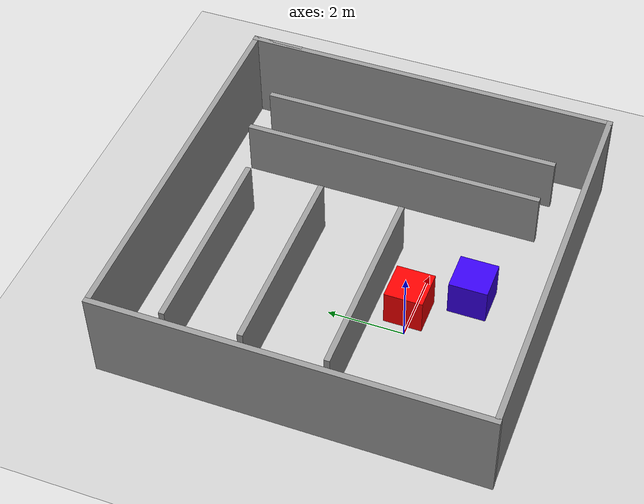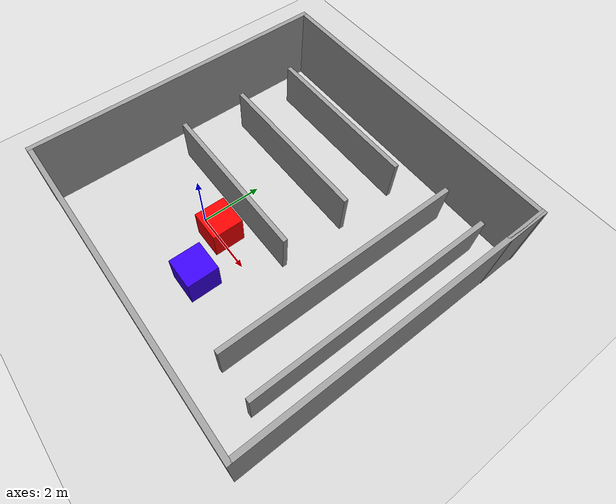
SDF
<sdf version="1.6">
 <world name="default">
  <light name="sun" type="directional">
   <pose>0 0 10 0 -0 0</pose>
   <diffuse>0.8 0.8 0.8 1</diffuse>
   <specular>0.2 0.2 0.2 1</specular>
   <attenuation>
    <range>1000</range>
    <constant>0.9</constant>
    <linear>0.01</linear>
    <quadratic>0.001</quadratic>
   </attenuation>
   <direction>-0.5 0.1 -0.9</direction>
  </light>
  <model name="ground_plane">
   <static>1</static>
   <link name="link">
    <collision name="collision">
     <geometry><plane><normal>0 0 1</normal><size>100 100</size></plane></geometry>
     <surface>
      <contact><collide_bitmask>65535</collide_bitmask></contact>
      <friction><ode><mu>100</mu><mu2>50</mu2></ode></friction>
     </surface>
    </collision>
    <visual name="visual">
     <cast_shadows>0</cast_shadows>
     <geometry><plane><normal>0 0 1</normal><size>100 100</size></plane></geometry>
     <material>
      <script><uri>file://media/materials/scripts/gazebo.material</uri><name>Gazebo/Grey</name></script>
     </material>
    </visual>
   </link>
  </model>
  <physics name="default_physics" default="0" type="ode">
   <real_time_update_rate>1000</real_time_update_rate>
   <max_step_size>0.001</max_step_size>
   <real_time_factor>1</real_time_factor>
   <ode>
    <solver>
     <type>quick</type>
     <iters>150</iters>
     <precon_iters>0</precon_iters>
     <sor>1.4</sor>
     <use_dynamic_moi_rescaling>1</use_dynamic_moi_rescaling>
    </solver>
    <constraints>
     <cfm>1e-05</cfm>
     <erp>0.2</erp>
     <contact_max_correcting_vel>2000</contact_max_correcting_vel>
     <contact_surface_layer>0.01</contact_surface_layer>
    </constraints>
   </ode>
  </physics>
  <scene><ambient>0.4 0.4 0.4 1</ambient><background>0.7 0.7 0.7 1</background><shadows>1</shadows></scene>
  <gravity>0 0 -9.8</gravity>
  <magnetic_field>6e-06 2.3e-05 -4.2e-05</magnetic_field>
  <atmosphere type="adiabatic"/>
  <audio><device>default</device></audio>
  <spherical_coordinates>
   <surface_model>EARTH_WGS84</surface_model>
   <latitude_deg>0</latitude_deg>
   <longitude_deg>0</longitude_deg>
   <elevation>0</elevation>
   <heading_deg>0</heading_deg>
  </spherical_coordinates>
  <model name="Warehouse">
   <pose>1.48568 1.6319 0 0 -0 0</pose>
   <link name="Wall_1">
    <collision name="Wall_1_Collision">
     <geometry><box><size>10 0.15 2.5</size></box></geometry>
     <pose>0 0 1.25 0 -0 0</pose>
    </collision>
    <visual name="Wall_1_Visual">
     <pose>0 0 1.25 0 -0 0</pose>
     <geometry><box><size>10 0.15 2.5</size></box></geometry>
     <material>
      <script><uri>file://media/materials/scripts/gazebo.material</uri><name>Gazebo/Grey</name></script>
      <ambient>1 1 1 1</ambient>
     </material>
     <meta><layer>0</layer></meta>
    </visual>
    <pose>0.059885 -4.92067 0 0 -0 0</pose>
   </link>
   <link name="Wall_11">
    <collision name="Wall_11_Collision">
     <geometry><box><size>5.25 0.15 1.5</size></box></geometry>
     <pose>0 0 0.75 0 -0 0</pose>
    </collision>
    <visual name="Wall_11_Visual">
     <pose>0 0 0.75 0 -0 0</pose>
     <geometry><box><size>5.25 0.15 1.5</size></box></geometry>
     <material>
      <script><uri>file://media/materials/scripts/gazebo.material</uri><name>Gazebo/Grey</name></script>
      <ambient>1 1 1 1</ambient>
     </material>
     <meta><layer>0</layer></meta>
    </visual>
    <pose>-1.42468 3.5931 0 0 -0 0</pose>
   </link>
   <link name="Wall_13">
    <collision name="Wall_13_Collision">
     <geometry><box><size>5.25 0.15 1.5</size></box></geometry>
     <pose>0 0 0.75 0 -0 0</pose>
    </collision>
    <visual name="Wall_13_Visual">
     <pose>0 0 0.75 0 -0 0</pose>
     <geometry><box><size>5.25 0.15 1.5</size></box></geometry>
     <material>
      <script><uri>file://media/materials/scripts/gazebo.material</uri><name>Gazebo/Grey</name></script>
      <ambient>1 1 1 1</ambient>
     </material>
     <meta><layer>0</layer></meta>
    </visual>
    <pose>-1.38968 1.58793 0 0 -0 0</pose>
   </link>
   <link name="Wall_15">
    <collision name="Wall_15_Collision">
     <geometry><box><size>5.25 0.15 1.5</size></box></geometry>
     <pose>0 0 0.75 0 -0 0</pose>
    </collision>
    <visual name="Wall_15_Visual">
     <pose>0 0 0.75 0 -0 0</pose>
     <geometry><box><size>5.25 0.15 1.5</size></box></geometry>
     <material>
      <script><uri>file://media/materials/scripts/gazebo.material</uri><name>Gazebo/Grey</name></script>
      <ambient>1 1 1 1</ambient>
     </material>
     <meta><layer>0</layer></meta>
    </visual>
    <pose>-1.38968 -0.593505 0 0 -0 0</pose>
   </link>
   <link name="Wall_17">
    <collision name="Wall_17_Collision">
     <geometry><box><size>8 0.15 1.5</size></box></geometry>
     <pose>0 0 0.75 0 -0 0</pose>
    </collision>
    <visual name="Wall_17_Visual">
     <pose>0 0 0.75 0 -0 0</pose>
     <geometry><box><size>8 0.15 1.5</size></box></geometry>
     <material>
      <script><uri>file://media/materials/scripts/gazebo.material</uri><name>Gazebo/Grey</name></script>
      <ambient>1 1 1 1</ambient>
     </material>
     <meta><layer>0</layer></meta>
    </visual>
    <pose>2.67432 0.196104 0 0 -0 -1.5708</pose>
   </link>
   <link name="Wall_19">
    <collision name="Wall_19_Collision">
     <geometry><box><size>8 0.15 1.5</size></box></geometry>
     <pose>0 0 0.75 0 -0 0</pose>
    </collision>
    <visual name="Wall_19_Visual">
     <pose>0 0 0.75 0 -0 0</pose>
     <geometry><box><size>8 0.15 1.5</size></box></geometry>
     <material>
      <script><uri>file://media/materials/scripts/gazebo.material</uri><name>Gazebo/Grey</name></script>
      <ambient>1 1 1 1</ambient>
     </material>
     <meta><layer>0</layer></meta>
    </visual>
    <pose>4.04632 0.161104 0 0 -0 -1.5708</pose>
   </link>
   <link name="Wall_4">
    <collision name="Wall_4_Collision">
     <geometry><box><size>10 0.15 2.5</size></box></geometry>
     <pose>0 0 1.25 0 -0 0</pose>
    </collision>
    <visual name="Wall_4_Visual">
     <pose>0 0 1.25 0 -0 0</pose>
     <geometry><box><size>10 0.15 2.5</size></box></geometry>
     <material>
      <script><uri>file://media/materials/scripts/gazebo.material</uri><name>Gazebo/Grey</name></script>
      <ambient>1 1 1 1</ambient>
     </material>
     <meta><layer>0</layer></meta>
    </visual>
    <pose>0.070316 4.92239 0 0 -0 0</pose>
   </link>
   <link name="Wall_6">
    <collision name="Wall_6_Collision">
     <geometry><box><size>10 0.15 2.5</size></box></geometry>
     <pose>0 0 1.25 0 -0 0</pose>
    </collision>
    <visual name="Wall_6_Visual">
     <pose>0 0 1.25 0 -0 0</pose>
     <geometry><box><size>10 0.15 2.5</size></box></geometry>
     <material>
      <script><uri>file://media/materials/scripts/gazebo.material</uri><name>Gazebo/Grey</name></script>
      <ambient>1 1 1 1</ambient>
     </material>
     <meta><layer>0</layer></meta>
    </visual>
    <pose>-4.99548 -0.004923 0 0 -0 1.5708</pose>
   </link>
   <link name="Wall_8">
    <collision name="Wall_8_Collision">
     <geometry><box><size>10 0.15 2.5</size></box></geometry>
     <pose>0 0 1.25 0 -0 0</pose>
    </collision>
    <visual name="Wall_8_Visual">
     <pose>0 0 1.25 0 -0 0</pose>
     <geometry><box><size>10 0.15 2.5</size></box></geometry>
     <material>
      <script><uri>file://media/materials/scripts/gazebo.material</uri><name>Gazebo/Grey</name></script>
      <ambient>1 1 1 1</ambient>
     </material>
     <meta><layer>0</layer></meta>
    </visual>
    <pose>4.98489 0.004326 0 0 -0 1.5708</pose>
   </link>
   <link name="Wall_9">
    <collision name="Wall_9_Collision">
     <geometry><box><size>1.40004 0.15 2.5</size></box></geometry>
     <pose>0 0 1.25 0 -0 0</pose>
    </collision>
    <visual name="Wall_9_Visual">
     <pose>0 0 1.25 0 -0 0</pose>
     <geometry><box><size>1.40004 0.15 2.5</size></box></geometry>
     <material>
      <script><uri>file://media/materials/scripts/gazebo.material</uri><name>Gazebo/Grey</name></script>
      <ambient>1 1 1 1</ambient>
     </material>
     <meta><layer>0</layer></meta>
    </visual>
    <pose>4.98989 4.30433 0 0 -0 -1.5628</pose>
   </link>
   <static>1</static>
  </model>
  <model name="unit_box_blue">
   <link name="link">
    <inertial>
     <mass>1</mass>
     <inertia>
      <ixx>0.166667</ixx>
      <ixy>0</ixy>
      <ixz>0</ixz>
      <iyy>0.166667</iyy>
      <iyz>0</iyz>
      <izz>0.166667</izz>
     </inertia>
    </inertial>
    <visual name="visual">
     <geometry><box><size>1 1 1</size></box></geometry>
     <material>
      <script><name>Gazebo/Grey</name><uri>file://media/materials/scripts/gazebo.material</uri></script>
      <shader type="vertex"><normal_map>__default__</normal_map></shader>
      <ambient>0.3 0.3 0.3 1</ambient>
      <diffuse>0.216 0 0.925 0</diffuse>
      <specular>0.01 0.01 0.01 1</specular>
      <emissive>0 0 0 1</emissive>
     </material>
    </visual>
    <collision name="collision">
     <geometry><box><size>1 1 1</size></box></geometry>
     <surface>
      <friction>
       <ode><mu>1</mu><mu2>1</mu2><fdir1>0 0 0</fdir1><slip1>0</slip1><slip2>0</slip2></ode>
       <torsional>
        <coefficient>1</coefficient>
        <patch_radius>0</patch_radius>
        <surface_radius>0</surface_radius>
        <use_patch_radius>1</use_patch_radius>
        <ode><slip>0</slip></ode>
       </torsional>
      </friction>
      <bounce><restitution_coefficient>0</restitution_coefficient><threshold>1e+06</threshold></bounce>
      <contact>
       <collide_without_contact>0</collide_without_contact>
       <collide_without_contact_bitmask>1</collide_without_contact_bitmask>
       <collide_bitmask>1</collide_bitmask>
       <ode>
        <soft_cfm>0</soft_cfm>
        <soft_erp>0.2</soft_erp>
        <kp>1e+13</kp>
        <kd>1</kd>
        <max_vel>0.01</max_vel>
        <min_depth>0</min_depth>
       </ode>
       <bullet>
        <split_impulse>1</split_impulse>
        <split_impulse_penetration_threshold>-0.01</split_impulse_penetration_threshold>
        <soft_cfm>0</soft_cfm>
        <soft_erp>0.2</soft_erp>
        <kp>1e+13</kp>
        <kd>1</kd>
       </bullet>
      </contact>
     </surface>
    </collision>
   </link>
   <static>0</static>
   <pose>1.57809 -1.25906 0.5 0 -0 0</pose>
  </model>
  <model name="unit_box_red">
   <link name="link">
    <inertial>
     <mass>1</mass>
     <inertia>
      <ixx>0.166667</ixx>
      <ixy>0</ixy>
      <ixz>0</ixz>
      <iyy>0.166667</iyy>
      <iyz>0</iyz>
      <izz>0.166667</izz>
     </inertia>
    </inertial>
    <visual name="visual">
     <geometry><box><size>1 1 1</size></box></geometry>
     <material>
      <script><name>Gazebo/Grey</name><uri>file://media/materials/scripts/gazebo.material</uri></script>
      <shader type="vertex"><normal_map>__default__</normal_map></shader>
      <ambient>1 0 0 1</ambient>
      <diffuse>0.7 0.7 0.7 1</diffuse>
      <specular>0.01 0.01 0.01 1</specular>
      <emissive>0 0 0 1</emissive>
     </material>
    </visual>
    <collision name="collision">
     <geometry><box><size>1 1 1</size></box></geometry>
     <surface>
      <friction>
       <ode><mu>1</mu><mu2>1</mu2><fdir1>0 0 0</fdir1><slip1>0</slip1><slip2>0</slip2></ode>
       <torsional>
        <coefficient>1</coefficient>
        <patch_radius>0</patch_radius>
        <surface_radius>0</surface_radius>
        <use_patch_radius>1</use_patch_radius>
        <ode><slip>0</slip></ode>
       </torsional>
      </friction>
      <bounce><restitution_coefficient>0</restitution_coefficient><threshold>1e+06</threshold></bounce>
      <contact>
       <collide_without_contact>0</collide_without_contact>
       <collide_without_contact_bitmask>1</collide_without_contact_bitmask>
       <collide_bitmask>1</collide_bitmask>
       <ode>
        <soft_cfm>0</soft_cfm>
        <soft_erp>0.2</soft_erp>
        <kp>1e+13</kp>
        <kd>1</kd>
        <max_vel>0.01</max_vel>
        <min_depth>0</min_depth>
       </ode>
       <bullet>
        <split_impulse>1</split_impulse>
        <split_impulse_penetration_threshold>-0.01</split_impulse_penetration_threshold>
        <soft_cfm>0</soft_cfm>
        <soft_erp>0.2</soft_erp>
        <kp>1e+13</kp>
        <kd>1</kd>
       </bullet>
      </contact>
     </surface>
    </collision>
   </link>
   <static>0</static>
   <pose>0.728377 0.124299 0.5 0 -0 0</pose>
  </model>
 </world>
</sdf>
